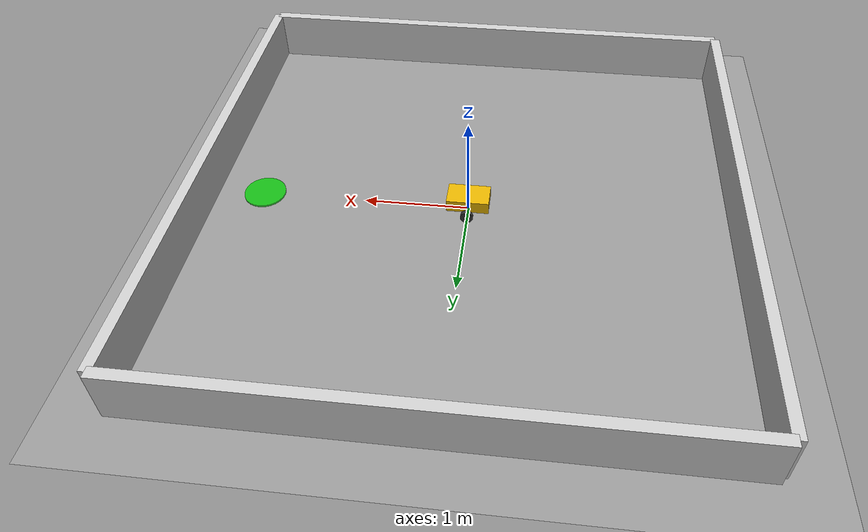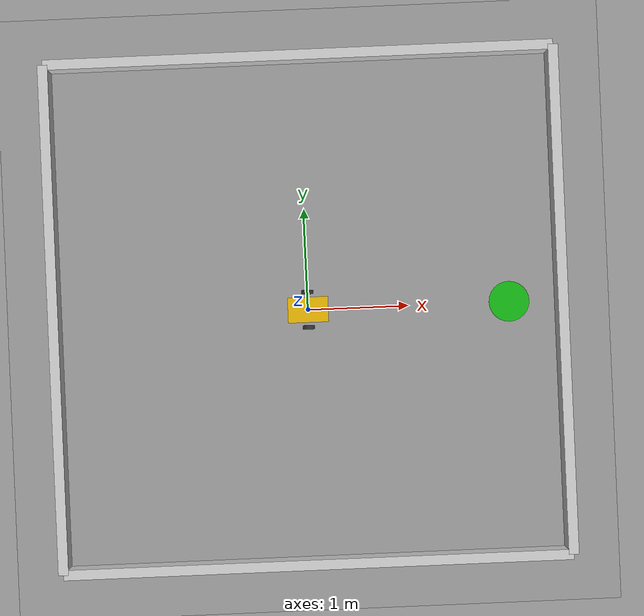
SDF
<?xml version="1.0"?>
<sdf version="1.10">
  <world name="warehouse">

    <!-- ── Physics and plugins ── -->
    <physics name="1ms" type="ignored">
      <max_step_size>0.001</max_step_size>
      <real_time_factor>1.0</real_time_factor>
    </physics>

    <plugin
      filename="gz-sim-physics-system"
      name="gz::sim::systems::Physics"/>
    <plugin
      filename="gz-sim-scene-broadcaster-system"
      name="gz::sim::systems::SceneBroadcaster"/>
    <plugin
      filename="gz-sim-user-commands-system"
      name="gz::sim::systems::UserCommands"/>

    <!-- ── Lighting ── -->
    <light name="sun" type="directional">
      <cast_shadows>true</cast_shadows>
      <pose>0 0 10 0 0 0</pose>
      <diffuse>0.8 0.8 0.8 1</diffuse>
      <specular>0.2 0.2 0.2 1</specular>
      <direction>-0.5 0.1 -0.9</direction>
    </light>

    <!-- ── Floor (6m x 6m) ── -->
    <model name="floor">
      <static>true</static>
      <link name="floor_link">
        <collision name="floor_collision">
          <geometry>
            <plane>
              <normal>0 0 1</normal>
              <size>6 6</size>
            </plane>
          </geometry>
        </collision>
        <visual name="floor_visual">
          <geometry>
            <plane>
              <normal>0 0 1</normal>
              <size>6 6</size>
            </plane>
          </geometry>
          <material>
            <ambient>0.6 0.6 0.6 1</ambient>
            <diffuse>0.6 0.6 0.6 1</diffuse>
          </material>
        </visual>
      </link>
    </model>

    <!-- ── Walls (5m x 5m enclosure, 0.5m tall, 0.1m thick) ── -->

    <!-- North wall -->
    <model name="wall_north">
      <static>true</static>
      <pose>2.5 0 0.25 0 0 0</pose>
      <link name="link">
        <collision name="collision">
          <geometry><box><size>0.1 5.0 0.5</size></box></geometry>
        </collision>
        <visual name="visual">
          <geometry><box><size>0.1 5.0 0.5</size></box></geometry>
          <material>
            <ambient>0.8 0.8 0.8 1</ambient>
            <diffuse>0.8 0.8 0.8 1</diffuse>
          </material>
        </visual>
      </link>
    </model>

    <!-- South wall -->
    <model name="wall_south">
      <static>true</static>
      <pose>-2.5 0 0.25 0 0 0</pose>
      <link name="link">
        <collision name="collision">
          <geometry><box><size>0.1 5.0 0.5</size></box></geometry>
        </collision>
        <visual name="visual">
          <geometry><box><size>0.1 5.0 0.5</size></box></geometry>
          <material>
            <ambient>0.8 0.8 0.8 1</ambient>
            <diffuse>0.8 0.8 0.8 1</diffuse>
          </material>
        </visual>
      </link>
    </model>

    <!-- East wall -->
    <model name="wall_east">
      <static>true</static>
      <pose>0 -2.5 0.25 0 0 0</pose>
      <link name="link">
        <collision name="collision">
          <geometry><box><size>5.0 0.1 0.5</size></box></geometry>
        </collision>
        <visual name="visual">
          <geometry><box><size>5.0 0.1 0.5</size></box></geometry>
          <material>
            <ambient>0.8 0.8 0.8 1</ambient>
            <diffuse>0.8 0.8 0.8 1</diffuse>
          </material>
        </visual>
      </link>
    </model>

    <!-- West wall -->
    <model name="wall_west">
      <static>true</static>
      <pose>0 2.5 0.25 0 0 0</pose>
      <link name="link">
        <collision name="collision">
          <geometry><box><size>5.0 0.1 0.5</size></box></geometry>
        </collision>
        <visual name="visual">
          <geometry><box><size>5.0 0.1 0.5</size></box></geometry>
          <material>
            <ambient>0.8 0.8 0.8 1</ambient>
            <diffuse>0.8 0.8 0.8 1</diffuse>
          </material>
        </visual>
      </link>
    </model>

    <!-- ── Goal marker (visual only, no collision) ── -->
    <model name="goal_marker">
      <static>true</static>
      <pose>2.0 0.0 0.01 0 0 0</pose>
      <link name="link">
        <visual name="visual">
          <geometry>
            <cylinder><radius>0.2</radius><length>0.02</length></cylinder>
          </geometry>
          <material>
            <ambient>0.0 0.8 0.0 0.8</ambient>
            <diffuse>0.0 0.8 0.0 0.8</diffuse>
          </material>
        </visual>
      </link>
    </model>

    <!-- ── Forklift (spawned at center, facing north) ── -->
    <include>
      <uri>model://forklift</uri>
      <pose>0 0 0.13 0 0 3.14159</pose>
    </include>

  </world>
</sdf>

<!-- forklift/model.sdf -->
<sdf version="1.10">
  <model name="forklift">
    <pose>0 0 0.13 0 0 0</pose>

    <!-- ── 1. Main body ── -->
    <link name="base_link">
      <inertial>
        <mass>5.0</mass>
        <inertia>
          <ixx>0.08</ixx><iyy>0.10</iyy><izz>0.10</izz>
          <ixy>0</ixy><ixz>0</ixz><iyz>0</iyz>
        </inertia>
      </inertial>
      <visual name="base_visual">
        <geometry>
          <box><size>0.4 0.25 0.12</size></box>
        </geometry>
        <material>
          <ambient>0.9 0.7 0.0 1</ambient>
          <diffuse>0.9 0.7 0.0 1</diffuse>
        </material>
      </visual>
      <collision name="base_collision">
        <geometry>
          <box><size>0.4 0.25 0.12</size></box>
        </geometry>
      </collision>
    </link>

    <!-- ── 2. Left drive wheel ── -->
    <link name="left_wheel">
      <!-- pose: x y z roll pitch yaw  (roll=pi/2 to orient cylinder axis laterally) -->
      <pose>0.0 0.175 -0.07 1.5708 0 0</pose>
      <inertial>
        <mass>0.5</mass>
        <inertia>
          <ixx>0.001</ixx><iyy>0.001</iyy><izz>0.001</izz>
          <ixy>0</ixy><ixz>0</ixz><iyz>0</iyz>
        </inertia>
      </inertial>
      <visual name="left_wheel_visual">
        <geometry>
          <cylinder><radius>0.06</radius><length>0.04</length></cylinder>
        </geometry>
        <material>
          <ambient>0.2 0.2 0.2 1</ambient>
          <diffuse>0.2 0.2 0.2 1</diffuse>
        </material>
      </visual>
      <collision name="left_wheel_collision">
        <geometry>
          <cylinder><radius>0.06</radius><length>0.04</length></cylinder>
        </geometry>
        <surface>
          <friction>
            <!-- mu: longitudinal friction, mu2: lateral friction -->
            <ode><mu>1.0</mu><mu2>0.5</mu2></ode>
          </friction>
        </surface>
      </collision>
    </link>

    <!-- ── 3. Right drive wheel ── -->
    <link name="right_wheel">
      <pose>0.0 -0.175 -0.07 1.5708 0 0</pose>
      <inertial>
        <mass>0.5</mass>
        <inertia>
          <ixx>0.001</ixx><iyy>0.001</iyy><izz>0.001</izz>
          <ixy>0</ixy><ixz>0</ixz><iyz>0</iyz>
        </inertia>
      </inertial>
      <visual name="right_wheel_visual">
        <geometry>
          <cylinder><radius>0.06</radius><length>0.04</length></cylinder>
        </geometry>
        <material>
          <ambient>0.2 0.2 0.2 1</ambient>
          <diffuse>0.2 0.2 0.2 1</diffuse>
        </material>
      </visual>
      <collision name="right_wheel_collision">
        <geometry>
          <cylinder><radius>0.06</radius><length>0.04</length></cylinder>
        </geometry>
        <surface>
          <friction>
            <ode><mu>1.0</mu><mu2>0.5</mu2></ode>
          </friction>
        </surface>
      </collision>
    </link>

    <!-- ── 4. Rear caster (friction-free ball to prevent tipping) ── -->
    <link name="caster">
      <pose>-0.15 0 -0.1 0 0 0</pose>
      <inertial>
        <mass>0.1</mass>
        <inertia>
          <ixx>0.0001</ixx><iyy>0.0001</iyy><izz>0.0001</izz>
          <ixy>0</ixy><ixz>0</ixz><iyz>0</iyz>
        </inertia>
      </inertial>
      <visual name="caster_visual">
        <geometry>
          <sphere><radius>0.03</radius></sphere>
        </geometry>
        <material>
          <ambient>0.5 0.5 0.5 1</ambient>
        </material>
      </visual>
      <collision name="caster_collision">
        <geometry>
          <sphere><radius>0.03</radius></sphere>
        </geometry>
        <surface>
          <friction>
            <!-- Zero friction so the caster does not resist turning -->
            <ode><mu>0.0</mu><mu2>0.0</mu2></ode>
          </friction>
        </surface>
      </collision>
    </link>

    <!-- ── 5. Joints ── -->
    <!-- Continuous revolute joints for the drive wheels -->
    <joint name="left_wheel_joint" type="revolute">
      <parent>base_link</parent>
      <child>left_wheel</child>
      <axis>
        <xyz>0 0 1</xyz>
        <limit><lower>-1e16</lower><upper>1e16</upper></limit>
      </axis>
    </joint>

    <joint name="right_wheel_joint" type="revolute">
      <parent>base_link</parent>
      <child>right_wheel</child>
      <axis>
        <xyz>0 0 1</xyz>
        <limit><lower>-1e16</lower><upper>1e16</upper></limit>
      </axis>
    </joint>

    <!-- Fixed joint: caster does not rotate relative to body -->
    <joint name="caster_joint" type="fixed">
      <parent>base_link</parent>
      <child>caster</child>
    </joint>

    <!-- ── 6. Differential drive plugin ── -->
    <plugin
      filename="gz-sim-diff-drive-system"
      name="gz::sim::systems::DiffDrive">
      <left_joint>left_wheel_joint</left_joint>
      <right_joint>right_wheel_joint</right_joint>
      <wheel_separation>0.35</wheel_separation>
      <wheel_radius>0.06</wheel_radius>
      <topic>/cmd_vel</topic>
      <odom_topic>/odom</odom_topic>
      <frame_id>odom</frame_id>
      <child_frame_id>base_link</child_frame_id>
    </plugin>

  </model>
</sdf>
